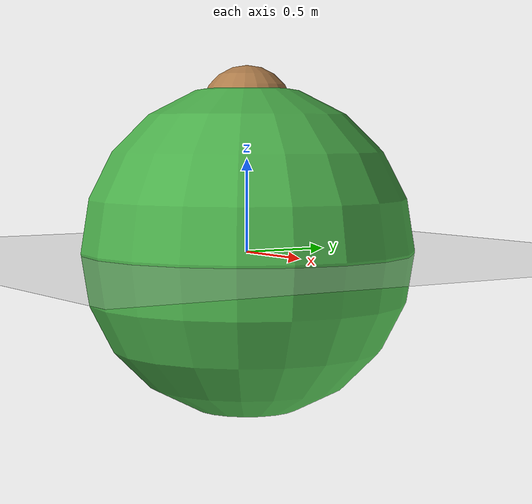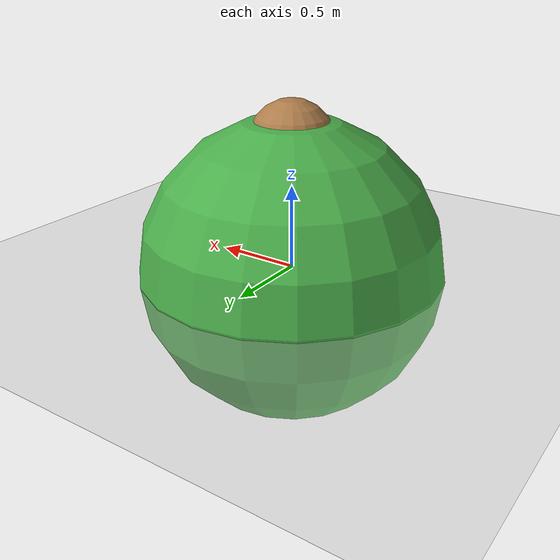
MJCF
<mujoco model="ant">
  <compiler angle="degree" coordinate="local" inertiafromgeom="true"/>
  <option timestep="0.01" iterations="4" />
  <custom>
    <!-- brax custom params -->
    <numeric data="1000" name="constraint_limit_stiffness"/>
    <numeric data="4000" name="constraint_stiffness"/>
    <numeric data="10" name="constraint_ang_damping"/>
    <numeric data="20" name="constraint_vel_damping"/>
    <numeric data="0.5" name="joint_scale_pos"/>
    <numeric data="0.2" name="joint_scale_ang"/>
    <numeric data="0.0" name="ang_damping"/>
    <numeric data="1" name="spring_mass_scale"/>
    <numeric data="1" name="spring_inertia_scale"/>
    <numeric data="15" name="solver_maxls"/>
  </custom>
  <default>
    <joint armature="1" damping="1" limited="true"/>
    <geom contype="0" conaffinity="0" condim="3" density="5.0" friction="1 0.5 0.5"/>
  </default>
  <asset>
    <texture builtin="gradient" height="100" rgb1="1 1 1" rgb2="0 0 0" type="skybox" width="100"/>
    <texture builtin="flat" height="1278" mark="cross" markrgb="1 1 1" name="texgeom" random="0.01" rgb1="0.8 0.6 0.4" rgb2="0.8 0.6 0.4" type="cube" width="127"/>
    <texture builtin="checker" height="100" name="texplane" rgb1="0.8 0.8 0.8" rgb2="0.8 0.8 0.8" type="2d" width="100"/>
    <material name="MatPlane" reflectance="0.5" shininess="1" specular="1" texrepeat="60 60" texture="texplane"/>
    <material name="geom" texture="texgeom" texuniform="true"/>
  </asset>
  <worldbody>
    <light cutoff="100" diffuse="1 1 1" dir="-0 0 -1.3" directional="true" exponent="1" pos="0 0 1.3" specular=".1 .1 .1"/>
    <geom conaffinity="1" condim="3" material="MatPlane" name="floor" pos="0 0 0" size="100 100 40" type="plane"/>
    <!-- this camera is for the open 5x5 block environment -->
    <camera name="overview" pos="8 6 10" xyaxes="1 0 0 0 1 0.1" fovy="115"/>
    <body name="torso" pos="0 0 0.75">
      <camera name="track" mode="trackcom" pos="0 -3 0.3" xyaxes="1 0 0 0 0 1"/>
      <geom name="torso_geom" pos="0 0 0" rgba="0.7 0.5 0.3 1.0" size="0.25" type="sphere" conaffinity="1" contype="1"/>

      <joint name="obj_slidex" type="slide" pos="0 0 0" axis="1 0 0" range="-100 100" damping="0.0"/>
      <joint name="obj_slidey" type="slide" pos="0 0 0" axis="0 1 0" range="-100 100" damping="0.0"/>
    </body>

    <body name="umaze_obstacle">
        <geom conaffinity="0" contype="0" pos="8 6 0.2" size="2.0 4.0 0.1" rgba="0.7 0.3 0.3 0.2" type="box"/>
    </body>

    <body name="target" pos="0 0 0.01">
        <joint armature="0" axis="1 0 0" damping="0" limited="true" name="target_x" pos="0 0 0" range="-100 100" stiffness="0" type="slide"/>
        <joint armature="0" axis="0 1 0" damping="0" limited="true" name="target_y" pos="0 0 0" range="-100 100" stiffness="0" type="slide"/>
        <geom conaffinity="0" contype="0" name="target" pos="0 0 0" rgba="0.3 0.7 0.3 1.0" size=".9" type="sphere"  mass="1.0"/>
    </body>
  </worldbody>
  <actuator>
    <motor name="move_x" joint="obj_slidex" gear="5 0 0"/>
    <motor name="move_y" joint="obj_slidey" gear="5 0 0"/>
  </actuator>
</mujoco>
